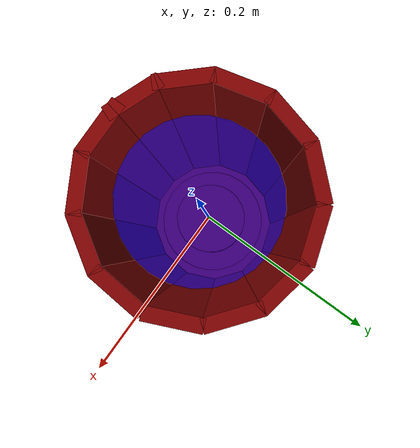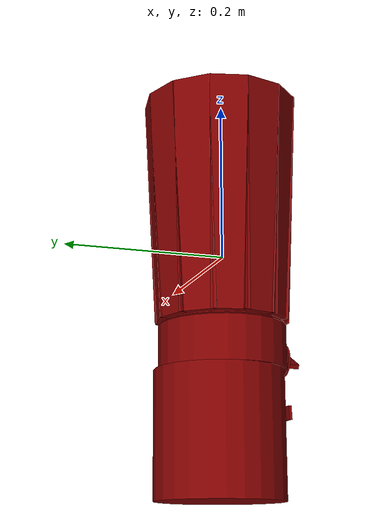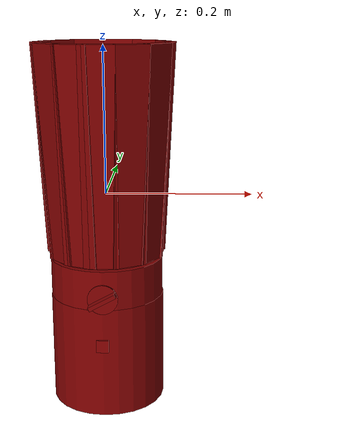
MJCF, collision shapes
<?xml version='1.0' encoding='UTF-8'?>
<mujoco model="model">
  <option timestep="0.0005" gravity="0.0 0.0 -9.81"/>
  <compiler angle="radian"/>
  <asset>
    <mesh file="visuals/blade.obj" name="blade_vis"/>
    <mesh file="visuals/Body001.obj" name="Body001_vis"/>
    <mesh file="visuals/knob_speed.obj" name="knob_speed_vis"/>
    <mesh file="visuals/pitcher.obj" name="pitcher_vis"/>
    <mesh file="visuals/pitcher_main.obj" name="pitcher_main_vis"/>
    <mesh file="visuals/power_button.obj" name="power_button_vis"/>
    <texture file="visuals/T_BC001.png" name="Body001_material" type="2d"/>
    <material name="Body001_material" rgba="1 1 1 1.0" texture="Body001_material" shininess="0.18054693937301636" specular="0.3103448502657381"/>
    <texture file="visuals/T_BC001.png" name="knob_speed_material" type="2d"/>
    <material name="knob_speed_material" rgba="1 1 1 1.0" texture="knob_speed_material" shininess="0.18054693937301636" specular="0.3103448502657381"/>
    <texture file="visuals/T_BC001.png" name="pitcher_material" type="2d"/>
    <material name="pitcher_material" rgba="1 1 1 1.0" texture="pitcher_material" shininess="0.18054693937301636" specular="0.3103448502657381"/>
    <texture file="visuals/T_BC001.png" name="blade_material" type="2d"/>
    <material name="blade_material" rgba="1 1 1 1.0" texture="blade_material" shininess="0.18054693937301636" specular="0.3103448502657381"/>
    <material name="pitcher_main_material" rgba="0.07069122791290283 0.07069122791290283 0.07069122791290283 0.800000011920929" shininess="0.4472135901451111" specular="0.3103448502657381"/>
    <texture file="visuals/T_BC001.png" name="power_button_material" type="2d"/>
    <material name="power_button_material" rgba="1 1 1 1.0" texture="power_button_material" shininess="0.18054693937301636" specular="0.3103448502657381"/>
  </asset>
  <default>
    <default class="visual">
      <geom conaffinity="0" contype="0" group="1" type="mesh"/>
    </default>
    <default class="collision">
      <geom group="0" rgba="0.5 0 0 0.5" density="1.0" solref="0.001 1" solimp="0.998 0.998 0.001"/>
    </default>
    <default class="spawn">
      <geom group="0" rgba="1 1 1 0.5" contype="0" conaffinity="0"/>
      <site group="0" rgba="1 1 1 0.5"/>
    </default>
    <default class="region">
      <geom group="1" conaffinity="0" contype="0" rgba="0 1 0 0" mass="0"/>
    </default>
  </default>
  <worldbody>
    <body>
      <body name="object">
        <geom mesh="Body001_vis" type="mesh" solimp="0.998 0.998 0.001" solref="0.001 1" friction="0.95 0.3 0.1" class="visual" material="Body001_material"/>
        <geom type="cylinder" pos="0.00003150 0.00165160 -0.11491977" size="0.07805658876895905 0.026969674974679947" quat="1.0 0.0 0.0 0.0" class="collision"/>
        <geom type="cylinder" pos="0.00003150 0.00632646 -0.21992963" size="0.07937656342983246 0.07767137885093689" quat="1.0 0.0 0.0 0.0" class="collision"/>
        <body name="power_button">
          <joint axis="0.0 0.9989084601402283 -0.046709246933460236" pos="0.00000293 -0.08181651 -0.19053080" limited="true" name="power_button_joint" range="0.0 0.002" type="slide" damping="1" frictionloss="1" armature=".01" stiffness="0.5" springref="-0.5"/>
          <geom mesh="power_button_vis" type="mesh" solimp="0.998 0.998 0.001" solref="0.001 1" friction="0.95 0.3 0.1" class="visual" material="power_button_material"/>
          <geom class="collision" type="box" pos="0.00020361 -0.08274168 -0.19018896" size="0.00850411131978035 0.0017433171160519123 0.008499964140355587" quat="0.9996948838233948 -0.02470068261027336 0.0 0.0" name="power_button_main"/>
        </body>
        <body name="pitcher">
          <geom mesh="pitcher_vis" type="mesh" solimp="0.998 0.998 0.001" solref="0.001 1" friction="0.95 0.3 0.1" class="visual" material="pitcher_material"/>
          <geom type="cylinder" pos="0.00003150 0.00165160 -0.07455194" size="0.05780214071273804 0.009653287939727306" quat="1.0 0.0 0.0 0.0" class="collision"/>
          <body name="blade">
            <geom mesh="blade_vis" type="mesh" solimp="0.998 0.998 0.001" solref="0.001 1" friction="0.95 0.3 0.1" class="visual" material="blade_material"/>
            <geom type="cylinder" pos="0.00003150 0.00165160 -0.03613366" size="0.03686840087175369 0.021862994879484177" quat="1.0 0.0 0.0 0.0" class="collision"/>
          </body>
          </body>
          <body name="pitcher_main">
            <geom class="region" type="cylinder" size="0.06541372835636139 0.09771689027547836" pos="-0.00003408 0.00123772 0.08816427" rgba="0 0 1 0.5" name="reg_int"/>
            <geom mesh="pitcher_main_vis" type="mesh" solimp="0.998 0.998 0.001" solref="0.001 1" friction="0.95 0.3 0.1" class="visual" material="pitcher_main_material"/>
            <geom type="box" pos="0.00003150 -0.07883070 0.06058837" size="0.023384518921375275 0.006012120749801397 0.1433258205652237" quat="0.9996532201766968 0.026332691311836243 5.8470105322535565e-18 1.7171592863270792e-24" class="collision"/>
            <geom type="box" pos="0.03787395 -0.06937903 0.06058838" size="0.023384520784020424 0.006012120749801397 0.1433258205652237" quat="0.9698599576950073 0.02554771862924099 0.006380904000252485 0.2422359734773636" class="collision"/>
            <geom type="box" pos="0.06703880 -0.04292891 0.06058838" size="0.023384518921375275 0.006012120749801397 0.1433258205652237" quat="0.8811467885971069 0.023210888728499413 0.012436130084097385 0.47210901975631714" class="collision"/>
            <geom type="box" pos="0.08013432 -0.00615469 0.06058838" size="0.023384517058730125 0.006012119818478823 0.1433258205652237" quat="0.7403488159179688 0.019502002745866776 0.01769385300576687 0.6717069745063782" class="collision"/>
            <geom type="box" pos="0.07372761 0.03399791 0.06058838" size="0.023384518921375275 0.00601212028414011 0.1433258205652237" quat="0.5466622710227966 0.014399973675608635 0.022046340629458427 0.8369390368461609" class="collision"/>
            <geom type="box" pos="0.04918063 0.06538356 0.06058838" size="0.023384518921375275 0.00601212028414011 0.1433258205652237" quat="0.32247495651245117 0.008494513109326363 0.024924755096435547 0.9462116360664368" class="collision"/>
            <geom type="box" pos="0.01321279 0.08104715 0.06058837" size="0.023384518921375275 0.006012120749801397 0.1433258205652237" quat="0.08213873952627182 0.0021636674646288157 0.0262435469776392 0.9962729811668396" class="collision"/>
            <geom type="box" pos="-0.02671975 0.07755792 0.06058837" size="0.023384518921375275 0.006012120749801397 0.1433258205652237" quat="0.16854876279830933 0.004439883399754763 -0.025955650955438614 -0.985341489315033" class="collision"/>
            <geom type="box" pos="-0.06019914 0.05503391 0.06058838" size="0.023384517058730125 0.00601212028414011 0.1433258205652237" quat="0.41017454862594604 0.010804679244756699 -0.024013789370656013 -0.9116268157958984" class="collision"/>
            <geom type="box" pos="-0.07832751 0.02001645 0.06058838" size="0.023384518921375275 0.00601212028414011 0.1433258205652237" quat="0.6209990978240967 0.01635812036693096 -0.020635200664401054 -0.7833688259124756" class="collision"/>
            <geom type="box" pos="-0.07780537 -0.01881358 0.06058838" size="0.023384520784020424 0.006012119818478823 0.1433258205652237" quat="0.7916476726531982 0.02085329033434391 -0.016079198569059372 -0.610410213470459" class="collision"/>
            <geom type="box" pos="-0.05887960 -0.05318346 0.06058838" size="0.023384518921375275 0.00601212028414011 0.1433258205652237" quat="0.9165601134300232 0.024143684655427933 -0.01051107794046402 -0.39902907609939575" class="collision"/>
            <geom type="box" pos="-0.02949975 -0.07321699 0.06058838" size="0.023384518921375275 0.00601212028414011 0.1433258205652237" quat="0.9820668697357178 0.02586924470961094 -0.004917584825307131 -0.18668484687805176" class="collision"/>
            <geom type="cylinder" pos="0.00003150 0.00165160 -0.08484465" size="0.07545583695173264 0.0007141885580495" quat="1.0 0.0 0.0 0.0" class="collision"/>
          </body>
        <body name="knob_speed">
          <joint axis="0.0 1.0 0.0" pos="0.00079307 -0.08164359 -0.12570382" limited="true" name="knob_speed_joint" range="0.0 4.1887902047863905" type="hinge" damping="0.05" frictionloss="0.1" armature="0.001"/>
          <geom mesh="knob_speed_vis" type="mesh" solimp="0.998 0.998 0.001" solref="0.001 1" friction="0.95 0.3 0.1" class="visual" material="knob_speed_material"/>
          <geom type="cylinder" pos="0.00084266 -0.07820336 -0.12568178" size="0.020389603450894356 0.0012918240390717983" quat="0.7071067094802856 0.70710688829422 -1.5700929612083792e-16 2.2148514736588345e-23" class="collision" density="0.001"/>
          <geom class="collision" type="box" pos="0.00084266 -0.08473472 -0.12568178" size="0.019798679277300835 0.006978995632380247 0.002770190592855215" quat="0.9689902663230896 -3.621175699097481e-16 -0.2470989227294922 8.45783443281789e-09" name="knob_speed_main" density="0.001"/>
        </body>
        <geom class="region" name="reg_main" type="box" pos="5.209999999998549e-06 0.0014792399999999997 3.1239999999987944e-05" size="0.09088413000000001 0.09106175 0.29762168"/>
      </body>
      <site rgba="0 1 0 0" size="0.005" pos="-1.44765918e-05 1.43516519e-03 2.36356226e-01" name="anchor_site"/>
    </body>
  </worldbody>
  <actuator>
    <motor name="knob_speed_joint_actuator" joint="knob_speed_joint" gear="10"/>
    <motor name="power_button_joint_actuator" joint="power_button_joint" gear="0.5"/>
  </actuator>
</mujoco>
